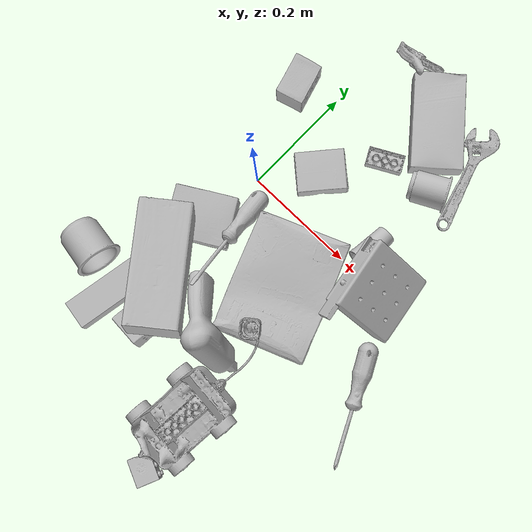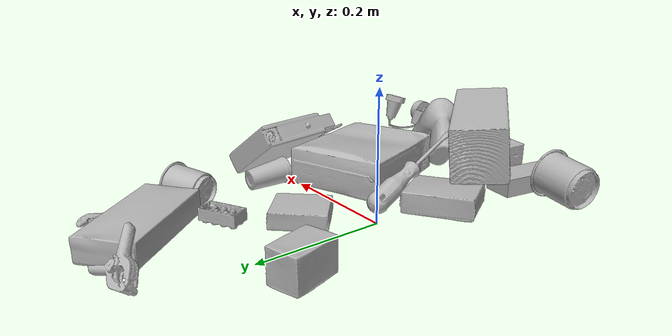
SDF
<sdf version="1.4">
  <world name="default">
    <light name="light1" type="point">
      <pose>0 0 1 0 0 0</pose>
      <diffuse>3 3 3 1</diffuse>
      <specular>3 3 3 1</specular>
    </light>
    <light name="light2" type="point">
      <pose>0 0.5 2 0 0 0</pose>
      <diffuse>1 1 1 1</diffuse>
      <specular>1 1 1 1</specular>
    </light>
    <light name="light3" type="point">
      <pose>0 0.5 2 0 0 0</pose>
      <diffuse>3 3 3 1</diffuse>
      <specular>3 3 3 1</specular>
    </light>
    <scene>
      <ambient>0.7 0.7 0.7</ambient>
    </scene>
    <model name="box21">
      <link name="link_box21">
        <collision name="default">
          <geometry>
            <mesh>
              <uri>model://cracker_box/collision_meshes/collision.obj</uri>
              <scale>1.0 1.0 1.0</scale>
            </mesh>
          </geometry>
          <surface>
            <friction>
              <ode>
                <mu>0.5</mu>
                <mu2>0.5</mu2>
              </ode>
            </friction>
          <contact>
        <ode>
            <max_vel>0</max_vel>
            <min_depth>0.0001</min_depth>
            <kp>1e8</kp>
        </ode>
    </contact></surface>
        </collision>
        <visual name="default">
          <geometry>
            <mesh>
              <uri>model://cracker_box/visual_meshes/visual.dae</uri>
              <scale>1.0 1.0 1.0</scale>
            </mesh>
          </geometry>
        </visual>
        <inertial>
          <mass>2.967785358428955</mass>
          <pose>0.0009464151808060706 0.00025434247800149024 -0.0017029535956680775 -0.0003162076618733006 -0.011106490531610344 0.00254679570085012</pose>
          <inertia>
            <ixx>0.0075487206</ixx>
            <iyy>0.012464421</iyy>
            <izz>0.017787872</izz>
            <ixy>0</ixy>
            <ixz>0</ixz>
            <iyz>0</iyz>
          </inertia>
        </inertial>
      </link>
      <pose>0.1627860814332962 -0.108019158244133 0.03648180514574051 -0.011786669825259078 -0.007366687280024249 1.9408331828632595</pose>
    </model>
    <model name="box22">
      <link name="link_box22">
        <collision name="default">
          <geometry>
            <mesh>
              <uri>model://rubiks_cube/collision_meshes/collision.obj</uri>
              <scale>1.0 1.0 1.0</scale>
            </mesh>
          </geometry>
          <surface>
            <friction>
              <ode>
                <mu>0.5</mu>
                <mu2>0.5</mu2>
              </ode>
            </friction>
          <contact>
        <ode>
            <max_vel>0</max_vel>
            <min_depth>0.0001</min_depth>
            <kp>1e8</kp>
        </ode>
    </contact></surface>
        </collision>
        <visual name="default">
          <geometry>
            <mesh>
              <uri>model://rubiks_cube/visual_meshes/visual.dae</uri>
              <scale>1.0 1.0 1.0</scale>
            </mesh>
          </geometry>
        </visual>
        <inertial>
          <mass>0.2631562352180481</mass>
          <pose>2.6721041649580002e-05 5.2569666877388954e-05 -7.264316082000732e-06 -0.05467275409565722 -0.09814109117242276 -0.03445701547045584</pose>
          <inertia>
            <ixx>0.0001454115</ixx>
            <iyy>0.00014473335</iyy>
            <izz>0.00014661645</izz>
            <ixy>0</ixy>
            <ixz>0</ixz>
            <iyz>0</iyz>
          </inertia>
        </inertial>
      </link>
      <pose>0.03158184140920639 -0.3132399618625641 0.02951643615961075 1.6011061916405898 1.2491890879284732e-05 3.054380100616187</pose>
    </model>
    <model name="box23">
      <link name="link_box23">
        <collision name="default">
          <geometry>
            <mesh>
              <uri>model://pudding_box/collision_meshes/collision.obj</uri>
              <scale>1.0 1.0 1.0</scale>
            </mesh>
          </geometry>
          <surface>
            <friction>
              <ode>
                <mu>0.5</mu>
                <mu2>0.5</mu2>
              </ode>
            </friction>
          <contact>
        <ode>
            <max_vel>0</max_vel>
            <min_depth>0.0001</min_depth>
            <kp>1e8</kp>
        </ode>
    </contact></surface>
        </collision>
        <visual name="default">
          <geometry>
            <mesh>
              <uri>model://pudding_box/visual_meshes/visual.dae</uri>
              <scale>1.0 1.0 1.0</scale>
            </mesh>
          </geometry>
        </visual>
        <inertial>
          <mass>0.41353368759155273</mass>
          <pose>0.0004894821904599667 0.0008067885646596551 -0.0005188827635720372 0.005213101814074476 -0.006603797777454713 0.020079821436089117</pose>
          <inertia>
            <ixx>0.0004674785</ixx>
            <iyy>0.00031452288</iyy>
            <izz>0.0006903542</izz>
            <ixy>0</ixy>
            <ixz>0</ixz>
            <iyz>0</iyz>
          </inertia>
        </inertial>
      </link>
      <pose>-0.020061872899532318 -0.11493436992168427 0.019725900143384933 0.022316115500920632 -0.011397858796113656 2.0943265394676964</pose>
    </model>
    <model name="cup1">
      <link name="link_cup1">
        <collision name="default">
          <geometry>
            <mesh>
              <uri>model://cup_small/collision_meshes/collision.obj</uri>
              <scale>1.0 1.0 1.0</scale>
            </mesh>
          </geometry>
          <surface>
            <friction>
              <ode>
                <mu>0.5</mu>
                <mu2>0.5</mu2>
              </ode>
            </friction>
          <contact>
        <ode>
            <max_vel>0</max_vel>
            <min_depth>0.0001</min_depth>
            <kp>1e8</kp>
        </ode>
    </contact></surface>
        </collision>
        <visual name="default">
          <geometry>
            <mesh>
              <uri>model://cup_small/visual_meshes/visual.dae</uri>
              <scale>1.0 1.0 1.0</scale>
            </mesh>
          </geometry>
        </visual>
        <inertial>
          <mass>0.02095564641058445</mass>
          <pose>0.00010482477955520153 -0.0003377848770469427 -0.01074282731860876 -0.011492722259696445 -0.015280529703091471 -0.5058449819350237</pose>
          <inertia>
            <ixx>1.2338362e-05</ixx>
            <iyy>1.240201e-05</iyy>
            <izz>5.5708097e-06</izz>
            <ixy>0</ixy>
            <ixz>0</ixz>
            <iyz>0</iyz>
          </inertia>
        </inertial>
      </link>
      <pose>0.22592630982398987 0.04821840673685074 0.019821498543024063 -1.4838362869118646 -0.23994931185893864 3.0889510149856183</pose>
    </model>
    <model name="cup2">
      <link name="link_cup2">
        <collision name="default">
          <geometry>
            <mesh>
              <uri>model://c_cups/collision_meshes/collision.obj</uri>
              <scale>1.0 1.0 1.0</scale>
            </mesh>
          </geometry>
          <surface>
            <friction>
              <ode>
                <mu>0.5</mu>
                <mu2>0.5</mu2>
              </ode>
            </friction>
          <contact>
        <ode>
            <max_vel>0</max_vel>
            <min_depth>0.0001</min_depth>
            <kp>1e8</kp>
        </ode>
    </contact></surface>
        </collision>
        <visual name="default">
          <geometry>
            <mesh>
              <uri>model://c_cups/visual_meshes/visual.dae</uri>
              <scale>1.0 1.0 1.0</scale>
            </mesh>
          </geometry>
        </visual>
        <inertial>
          <mass>0.04905003309249878</mass>
          <pose>0.0007237255922518671 0.0020153908990323544 -0.0012750986497849226 0.30215813246853196 0.013461388587527759 -0.08771773533446486</pose>
          <inertia>
            <ixx>3.6477843e-05</ixx>
            <iyy>3.583322e-05</iyy>
            <izz>3.225985e-05</izz>
            <ixy>0</ixy>
            <ixz>0</ixz>
            <iyz>0</iyz>
          </inertia>
        </inertial>
      </link>
      <pose>0.2273576706647873 0.18550290167331696 0.030103346332907677 1.48039369449711 0.1625023806372375 2.009337823418663</pose>
    </model>
    <model name="box11">
      <link name="link_box11">
        <collision name="default">
          <geometry>
            <mesh>
              <uri>model://sugar_box/collision_meshes/collision.obj</uri>
              <scale>1.0 1.0 1.0</scale>
            </mesh>
          </geometry>
          <surface>
            <friction>
              <ode>
                <mu>0.5</mu>
                <mu2>0.5</mu2>
              </ode>
            </friction>
          <contact>
        <ode>
            <max_vel>0</max_vel>
            <min_depth>0.0001</min_depth>
            <kp>1e8</kp>
        </ode>
    </contact></surface>
        </collision>
        <visual name="default">
          <geometry>
            <mesh>
              <uri>model://sugar_box/visual_meshes/visual.dae</uri>
              <scale>1.0 1.0 1.0</scale>
            </mesh>
          </geometry>
        </visual>
        <inertial>
          <mass>0.9405714869499207</mass>
          <pose>0.0010343727190047503 3.849109634757042e-05 -0.0003636480832938105 -0.00040462618385709627 0.0010506635220579009 0.0026153790218148127</pose>
          <inertia>
            <ixx>0.0007836817</ixx>
            <iyy>0.0025330195</iyy>
            <izz>0.0030323272</izz>
            <ixy>0</ixy>
            <ixz>0</ixz>
            <iyz>0</iyz>
          </inertia>
        </inertial>
      </link>
      <pose>0.15833139419555664 0.28630203008651733 0.022798607125878334 0.0007755831081187292 -0.023433260219196197 -0.8848569477107193</pose>
    </model>
    <model name="box12">
      <link name="link_box12">
        <collision name="default">
          <geometry>
            <mesh>
              <uri>model://jenga/collision_meshes/collision.obj</uri>
              <scale>1.0 1.0 1.0</scale>
            </mesh>
          </geometry>
          <surface>
            <friction>
              <ode>
                <mu>0.5</mu>
                <mu2>0.5</mu2>
              </ode>
            </friction>
          <contact>
        <ode>
            <max_vel>0</max_vel>
            <min_depth>0.0001</min_depth>
            <kp>1e8</kp>
        </ode>
    </contact></surface>
        </collision>
        <visual name="default">
          <geometry>
            <mesh>
              <uri>model://jenga/visual_meshes/visual.dae</uri>
              <scale>1.0 1.0 1.0</scale>
            </mesh>
          </geometry>
        </visual>
        <inertial>
          <mass>0.2285791039466858</mass>
          <pose>-2.502855807051674e-07 -0.00010250010382151231 -4.0923405322246253e-05 0.0 -7.342155186052628e-07 0.0</pose>
          <inertia>
            <ixx>6.3253385e-05</ixx>
            <iyy>0.00042860323</iyy>
            <izz>0.00045757034</izz>
            <ixy>0</ixy>
            <ixz>0</ixz>
            <iyz>0</iyz>
          </inertia>
        </inertial>
      </link>
      <pose>-0.041696105152368546 -0.3076769709587097 0.015000001527369022 -3.141592631872774 -3.108883785561009e-10 1.3920046086877473</pose>
    </model>
    <model name="box13">
      <link name="link_box13">
        <collision name="default">
          <geometry>
            <mesh>
              <uri>model://wood_block/collision_meshes/collision.obj</uri>
              <scale>1.0 1.0 1.0</scale>
            </mesh>
          </geometry>
          <surface>
            <friction>
              <ode>
                <mu>0.5</mu>
                <mu2>0.5</mu2>
              </ode>
            </friction>
          <contact>
        <ode>
            <max_vel>0</max_vel>
            <min_depth>0.0001</min_depth>
            <kp>1e8</kp>
        </ode>
    </contact></surface>
        </collision>
        <visual name="default">
          <geometry>
            <mesh>
              <uri>model://wood_block/visual_meshes/visual.dae</uri>
              <scale>1.0 1.0 1.0</scale>
            </mesh>
          </geometry>
        </visual>
        <inertial>
          <mass>1.608048677444458</mass>
          <pose>-5.813315056002466e-06 -0.000570809468626976 0.0002640858292579651 -0.05220975529066727 -0.005192695547513155 -0.006861377927637377</pose>
          <inertia>
            <ixx>0.002151813</ixx>
            <iyy>0.006797577</iyy>
            <izz>0.0067721503</izz>
            <ixy>0</ixy>
            <ixz>0</ixz>
            <iyz>0</iyz>
          </inertia>
        </inertial>
      </link>
      <pose>0.007622973527759314 -0.22541533410549164 0.09586101025342941 -3.0503139558400294 0.08846082029721022 2.247278804519041</pose>
    </model>
    <model name="box14">
      <link name="link_box14">
        <collision name="default">
          <geometry>
            <mesh>
              <uri>model://gelatin_box/collision_meshes/collision.obj</uri>
              <scale>1.0 1.0 1.0</scale>
            </mesh>
          </geometry>
          <surface>
            <friction>
              <ode>
                <mu>0.5</mu>
                <mu2>0.5</mu2>
              </ode>
            </friction>
          <contact>
        <ode>
            <max_vel>0</max_vel>
            <min_depth>0.0001</min_depth>
            <kp>1e8</kp>
        </ode>
    </contact></surface>
        </collision>
        <visual name="default">
          <geometry>
            <mesh>
              <uri>model://gelatin_box/visual_meshes/visual.dae</uri>
              <scale>1.0 1.0 1.0</scale>
            </mesh>
          </geometry>
        </visual>
        <inertial>
          <mass>0.228233203291893</mass>
          <pose>0.0004319618456065655 0.00011156871914863586 -0.0003640321083366871 -0.0010503721031013481 -0.004755817754301117 0.016440566922732165</pose>
          <inertia>
            <ixx>0.000161114</ixx>
            <iyy>0.0001150829</iyy>
            <izz>0.0002452514</izz>
            <ixy>0</ixy>
            <ixz>0</ixz>
            <iyz>0</iyz>
          </inertia>
        </inertial>
      </link>
      <pose>0.07154949009418488 0.08427458256483078 0.014580648392438889 -3.125865708369284 -0.025719257180317156 -0.7173235489898571</pose>
    </model>
    <model name="cup15">
      <link name="link_cup15">
        <collision name="default">
          <geometry>
            <mesh>
              <uri>model://f_cups/collision_meshes/collision.obj</uri>
              <scale>1.0 1.0 1.0</scale>
            </mesh>
          </geometry>
          <surface>
            <friction>
              <ode>
                <mu>0.5</mu>
                <mu2>0.5</mu2>
              </ode>
            </friction>
          <contact>
        <ode>
            <max_vel>0</max_vel>
            <min_depth>0.0001</min_depth>
            <kp>1e8</kp>
        </ode>
    </contact></surface>
        </collision>
        <visual name="default">
          <geometry>
            <mesh>
              <uri>model://f_cups/visual_meshes/visual.dae</uri>
              <scale>1.0 1.0 1.0</scale>
            </mesh>
          </geometry>
        </visual>
        <inertial>
          <mass>0.05267045274376869</mass>
          <pose>-0.003171468386426568 -0.0006240073125809431 -0.003655537962913513 0.7862325736201227 -0.2607934836260618 -0.18237270236977254</pose>
          <inertia>
            <ixx>4.9511644e-05</ixx>
            <iyy>5.193826e-05</iyy>
            <izz>5.4069198e-05</izz>
            <ixy>0</ixy>
            <ixz>0</ixz>
            <iyz>0</iyz>
          </inertia>
        </inertial>
      </link>
      <pose>-0.12100113183259964 -0.28098392486572266 0.03718625754117966 -0.5491361327707692 -1.4613847235437014 -2.7509340638786304</pose>
    </model>
    <model name="toy1">
      <link name="link_toy1">
        <collision name="default">
          <geometry>
            <mesh>
              <uri>model://g_lego_duplo/collision_meshes/collision.obj</uri>
              <scale>1.0 1.0 1.0</scale>
            </mesh>
          </geometry>
          <surface>
            <friction>
              <ode>
                <mu>0.5</mu>
                <mu2>0.5</mu2>
              </ode>
            </friction>
          <contact>
        <ode>
            <max_vel>0</max_vel>
            <min_depth>0.0001</min_depth>
            <kp>1e8</kp>
        </ode>
    </contact></surface>
        </collision>
        <visual name="default">
          <geometry>
            <mesh>
              <uri>model://g_lego_duplo/visual_meshes/visual.dae</uri>
              <scale>1.0 1.0 1.0</scale>
            </mesh>
          </geometry>
        </visual>
        <inertial>
          <mass>0.5557854771614075</mass>
          <pose>-0.050047677010297775 0.0017554635414853692 0.0038806761149317026 0.01096300832625367 0.038108254431045284 -0.0965302354071939</pose>
          <inertia>
            <ixx>0.0008053398</ixx>
            <iyy>0.0024348022</iyy>
            <izz>0.003046027</izz>
            <ixy>0</ixy>
            <ixz>0</ixz>
            <iyz>0</iyz>
          </inertia>
        </inertial>
      </link>
      <pose>0.1966213881969452 -0.315193772315979 0.06269461661577225 -3.1415799097322226 -0.29859772349969815 1.4822085863699666</pose>
    </model>
    <model name="toy2">
      <link name="link_toy2">
        <collision name="default">
          <geometry>
            <mesh>
              <uri>model://b_toy_airplane/collision_meshes/collision.obj</uri>
              <scale>1.0 1.0 1.0</scale>
            </mesh>
          </geometry>
          <surface>
            <friction>
              <ode>
                <mu>0.5</mu>
                <mu2>0.5</mu2>
              </ode>
            </friction>
          <contact>
        <ode>
            <max_vel>0</max_vel>
            <min_depth>0.0001</min_depth>
            <kp>1e8</kp>
        </ode>
    </contact></surface>
        </collision>
        <visual name="default">
          <geometry>
            <mesh>
              <uri>model://b_toy_airplane/visual_meshes/visual.dae</uri>
              <scale>1.0 1.0 1.0</scale>
            </mesh>
          </geometry>
        </visual>
        <inertial>
          <mass>0.5134223699569702</mass>
          <pose>0.00508136348798871 0.004015584941953421 0.009543065913021564 -0.0400181167848636 -0.04022184003740235 -0.5601502230799963</pose>
          <inertia>
            <ixx>0.00095317804</ixx>
            <iyy>0.00038099466</iyy>
            <izz>0.0011858484</izz>
            <ixy>0</ixy>
            <ixz>0</ixz>
            <iyz>0</iyz>
          </inertia>
        </inertial>
      </link>
      <pose>0.12790292501449585 -0.23690195381641388 0.07580966502428055 2.382760839589377 0.9382281839014097 0.07028718726618734</pose>
    </model>
    <model name="toy3">
      <link name="link_toy3">
        <collision name="default">
          <geometry>
            <mesh>
              <uri>model://foam_brick/collision_meshes/collision.obj</uri>
              <scale>1.0 1.0 1.0</scale>
            </mesh>
          </geometry>
          <surface>
            <friction>
              <ode>
                <mu>0.5</mu>
                <mu2>0.5</mu2>
              </ode>
            </friction>
          <contact>
        <ode>
            <max_vel>0</max_vel>
            <min_depth>0.0001</min_depth>
            <kp>1e8</kp>
        </ode>
    </contact></surface>
        </collision>
        <visual name="default">
          <geometry>
            <mesh>
              <uri>model://foam_brick/visual_meshes/visual.dae</uri>
              <scale>1.0 1.0 1.0</scale>
            </mesh>
          </geometry>
        </visual>
        <inertial>
          <mass>0.10737738013267517</mass>
          <pose>-0.0002522472059354186 0.00034584314562380314 -0.0002532101352699101 -0.29401713280371045 0.01727443708188723 -0.0007449863066790336</pose>
          <inertia>
            <ixx>4.6904443e-05</ixx>
            <iyy>7.488536e-05</iyy>
            <izz>7.583706e-05</izz>
            <ixy>0</ixy>
            <ixz>0</ixz>
            <iyz>0</iyz>
          </inertia>
        </inertial>
      </link>
      <pose>-0.0648992583155632 0.17180319130420685 0.025910697877407074 1.5828207110429175 -0.0003755936025300163 1.8550375661512728</pose>
    </model>
    <model name="toy4">
      <link name="link_toy4">
        <collision name="default">
          <geometry>
            <mesh>
              <uri>model://c_lego_duplo/collision_meshes/collision.obj</uri>
              <scale>1.0 1.0 1.0</scale>
            </mesh>
          </geometry>
          <surface>
            <friction>
              <ode>
                <mu>0.5</mu>
                <mu2>0.5</mu2>
              </ode>
            </friction>
          <contact>
        <ode>
            <max_vel>0</max_vel>
            <min_depth>0.0001</min_depth>
            <kp>1e8</kp>
        </ode>
    </contact></surface>
        </collision>
        <visual name="default">
          <geometry>
            <mesh>
              <uri>model://c_lego_duplo/visual_meshes/visual.dae</uri>
              <scale>1.0 1.0 1.0</scale>
            </mesh>
          </geometry>
        </visual>
        <inertial>
          <mass>0.0418582409620285</mass>
          <pose>0.00031645974377170205 0.00019464627257548273 0.0010453157592564821 -0.011520806412656213 0.005900100982121691 0.03110035028309464</pose>
          <inertia>
            <ixx>1.6107831e-05</ixx>
            <iyy>5.145423e-06</iyy>
            <izz>1.8823655e-05</izz>
            <ixy>0</ixy>
            <ixz>0</ixz>
            <iyz>0</iyz>
          </inertia>
        </inertial>
      </link>
      <pose>0.13739585876464844 0.17625056207180023 0.011916408315300941 -3.135080605101801 -0.00037792107729854113 -1.0610500399258223</pose>
    </model>
    <model name="toy5">
      <link name="link_toy5">
        <collision name="default">
          <geometry>
            <mesh>
              <uri>model://nine_hole_peg_test/collision_meshes/collision.obj</uri>
              <scale>1.0 1.0 1.0</scale>
            </mesh>
          </geometry>
          <surface>
            <friction>
              <ode>
                <mu>0.5</mu>
                <mu2>0.5</mu2>
              </ode>
            </friction>
          <contact>
        <ode>
            <max_vel>0</max_vel>
            <min_depth>0.0001</min_depth>
            <kp>1e8</kp>
        </ode>
    </contact></surface>
        </collision>
        <visual name="default">
          <geometry>
            <mesh>
              <uri>model://nine_hole_peg_test/visual_meshes/visual.dae</uri>
              <scale>1.0 1.0 1.0</scale>
            </mesh>
          </geometry>
        </visual>
        <inertial>
          <mass>0.44585999846458435</mass>
          <pose>-0.004617387428879738 -0.009647615253925323 2.6460689696250483e-05 -0.001466677754783098 0.0007194209279192062 -0.6342398490080472</pose>
          <inertia>
            <ixx>0.0006971755</ixx>
            <iyy>0.0006509454</iyy>
            <izz>0.0012216569</izz>
            <ixy>0</ixy>
            <ixz>0</ixz>
            <iyz>0</iyz>
          </inertia>
        </inertial>
      </link>
      <pose>0.2781578004360199 -0.015882201492786407 0.055380355566740036 0.002058060121798842 -0.6221112723720494 -2.9754833235804954</pose>
    </model>
    <model name="toy6">
      <link name="link_toy6">
        <collision name="default">
          <geometry>
            <mesh>
              <uri>model://d_lego_duplo/collision_meshes/collision.obj</uri>
              <scale>1.0 1.0 1.0</scale>
            </mesh>
          </geometry>
          <surface>
            <friction>
              <ode>
                <mu>0.5</mu>
                <mu2>0.5</mu2>
              </ode>
            </friction>
          <contact>
        <ode>
            <max_vel>0</max_vel>
            <min_depth>0.0001</min_depth>
            <kp>1e8</kp>
        </ode>
    </contact></surface>
        </collision>
        <visual name="default">
          <geometry>
            <mesh>
              <uri>model://d_lego_duplo/visual_meshes/visual.dae</uri>
              <scale>1.0 1.0 1.0</scale>
            </mesh>
          </geometry>
        </visual>
        <inertial>
          <mass>0.03287249803543091</mass>
          <pose>0.00283056334592402 0.0001636616507312283 0.000858980929479003 0.08010843587180921 -0.38355193616427774 0.0010296778305230027</pose>
          <inertia>
            <ixx>6.363631e-06</ixx>
            <iyy>9.031719e-06</iyy>
            <izz>8.709827e-06</izz>
            <ixy>0</ixy>
            <ixz>0</ixz>
            <iyz>0</iyz>
          </inertia>
        </inertial>
      </link>
      <pose>0.20730207860469818 -0.47383251786231995 0.01641116663813591 -1.5613530611146247 0.00020913608770690528 -0.41991196057734786</pose>
    </model>
    <model name="hardware1">
      <link name="link_hardware1">
        <collision name="default">
          <geometry>
            <mesh>
              <uri>model://phillips_screwdriver/collision_meshes/collision.obj</uri>
              <scale>1.0 1.0 1.0</scale>
            </mesh>
          </geometry>
          <surface>
            <friction>
              <ode>
                <mu>0.5</mu>
                <mu2>0.5</mu2>
              </ode>
            </friction>
          <contact>
        <ode>
            <max_vel>0</max_vel>
            <min_depth>0.0001</min_depth>
            <kp>1e8</kp>
        </ode>
    </contact></surface>
        </collision>
        <visual name="default">
          <geometry>
            <mesh>
              <uri>model://phillips_screwdriver/visual_meshes/visual.dae</uri>
              <scale>1.0 1.0 1.0</scale>
            </mesh>
          </geometry>
        </visual>
        <inertial>
          <mass>0.05929635465145111</mass>
          <pose>-0.04777182266116142 0.0010362300090491772 -0.00045555492397397757 -0.15720933335137202 0.005850991845378533 -0.002156742438797471</pose>
          <inertia>
            <ixx>6.9667135e-06</ixx>
            <iyy>8.735042e-05</iyy>
            <izz>8.742465e-05</izz>
            <ixy>0</ixy>
            <ixz>0</ixz>
            <iyz>0</iyz>
          </inertia>
        </inertial>
      </link>
      <pose>0.38045334815979004 -0.16518516838550568 0.014107832685112953 1.4171693207541747 0.03266067280983417 -1.103948244672618</pose>
    </model>
    <model name="hardware2">
      <link name="link_hardware2">
        <collision name="default">
          <geometry>
            <mesh>
              <uri>model://flat_screwdriver/collision_meshes/collision.obj</uri>
              <scale>1.0 1.0 1.0</scale>
            </mesh>
          </geometry>
          <surface>
            <friction>
              <ode>
                <mu>0.5</mu>
                <mu2>0.5</mu2>
              </ode>
            </friction>
          <contact>
        <ode>
            <max_vel>0</max_vel>
            <min_depth>0.0001</min_depth>
            <kp>1e8</kp>
        </ode>
    </contact></surface>
        </collision>
        <visual name="default">
          <geometry>
            <mesh>
              <uri>model://flat_screwdriver/visual_meshes/visual.dae</uri>
              <scale>1.0 1.0 1.0</scale>
            </mesh>
          </geometry>
        </visual>
        <inertial>
          <mass>0.08023945242166519</mass>
          <pose>-0.0489187017083168 -0.0006576800369657576 -0.000614091579336673 -0.561358306335632 -0.0032337267228942767 0.006982275729110292</pose>
          <inertia>
            <ixx>9.4802335e-06</ixx>
            <iyy>0.00012035375</iyy>
            <izz>0.00012029803</izz>
            <ixy>0</ixy>
            <ixz>0</ixz>
            <iyz>0</iyz>
          </inertia>
        </inertial>
      </link>
      <pose>0.04283143952488899 -0.10863892734050751 0.04909348487854004 0.516718997963429 -0.3546216286340256 -1.4062547145893844</pose>
    </model>
    <model name="hardware3">
      <link name="link_hardware3">
        <collision name="default">
          <geometry>
            <mesh>
              <uri>model://medium_clamp/collision_meshes/collision.obj</uri>
              <scale>1.0 1.0 1.0</scale>
            </mesh>
          </geometry>
          <surface>
            <friction>
              <ode>
                <mu>0.5</mu>
                <mu2>0.5</mu2>
              </ode>
            </friction>
          <contact>
        <ode>
            <max_vel>0</max_vel>
            <min_depth>0.0001</min_depth>
            <kp>1e8</kp>
        </ode>
    </contact></surface>
        </collision>
        <visual name="default">
          <geometry>
            <mesh>
              <uri>model://medium_clamp/visual_meshes/visual.dae</uri>
              <scale>1.0 1.0 1.0</scale>
            </mesh>
          </geometry>
        </visual>
        <inertial>
          <mass>0.025976430624723434</mass>
          <pose>0.0053909942507743835 0.0003953239065594971 -0.0001222159480676055 -0.001226907020768324 0.0025845009771016812 0.038207788380880015</pose>
          <inertia>
            <ixx>7.0769133e-06</ixx>
            <iyy>1.02989125e-05</iyy>
            <izz>1.5863408e-05</izz>
            <ixy>0</ixy>
            <ixz>0</ixz>
            <iyz>0</iyz>
          </inertia>
        </inertial>
      </link>
      <pose>0.05616972595453262 0.3478391766548157 0.02296299859881401 0.8573897747256619 0.28475376438232214 3.0704357136522487</pose>
    </model>
    <model name="hardware4">
      <link name="link_hardware4">
        <collision name="default">
          <geometry>
            <mesh>
              <uri>model://adjustable_wrench/collision_meshes/collision.obj</uri>
              <scale>1.0 1.0 1.0</scale>
            </mesh>
          </geometry>
          <surface>
            <friction>
              <ode>
                <mu>0.5</mu>
                <mu2>0.5</mu2>
              </ode>
            </friction>
          <contact>
        <ode>
            <max_vel>0</max_vel>
            <min_depth>0.0001</min_depth>
            <kp>1e8</kp>
        </ode>
    </contact></surface>
        </collision>
        <visual name="default">
          <geometry>
            <mesh>
              <uri>model://adjustable_wrench/visual_meshes/visual.dae</uri>
              <scale>1.0 1.0 1.0</scale>
            </mesh>
          </geometry>
        </visual>
        <inertial>
          <mass>0.023418840020895004</mass>
          <pose>0.03740980848670006 -0.00289688678458333 -0.0011149229248985648 -0.014473354604289867 0.006656022134877207 -0.010954199158636425</pose>
          <inertia>
            <ixx>4.793005e-06</ixx>
            <iyy>5.609652e-05</iyy>
            <izz>6.0634928e-05</izz>
            <ixy>0</ixy>
            <ixz>0</ixz>
            <iyz>0</iyz>
          </inertia>
        </inertial>
      </link>
      <pose>0.25549572706222534 0.25446051359176636 0.006125114858150482 0.04676933916694072 -0.029269905121187986 1.8586330127588604</pose>
    </model>
  <physics type="ode">
      <max_contacts>50</max_contacts>
      <ode>
        <solver>
          <type>quick</type>
          <iters>75</iters>
        </solver>
        <constraints>
          <contact_max_correcting_vel>0</contact_max_correcting_vel>
          <contact_surface_layer>0</contact_surface_layer>
        </constraints>
      </ode>
    </physics></world>
</sdf>
